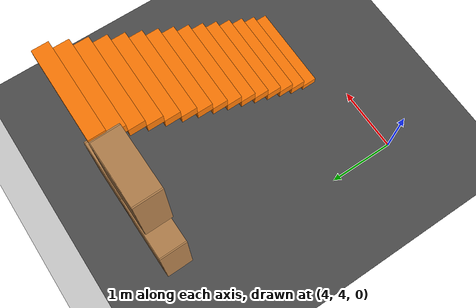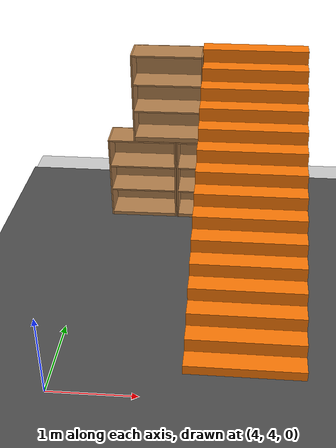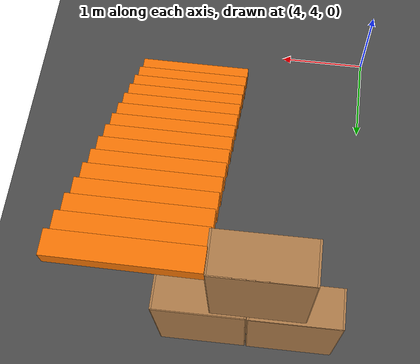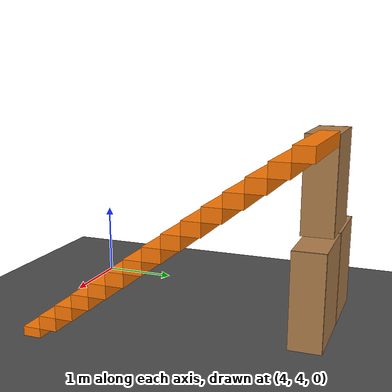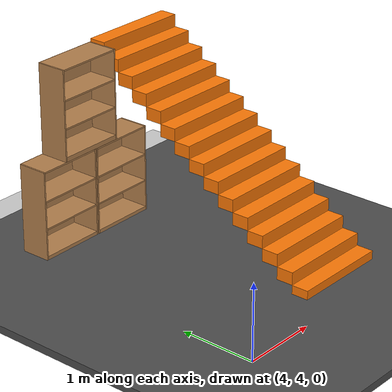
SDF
<sdf version="1.6">
 <world name="default">
  <model name="ground_plane">
   <static>1</static>
   <link name="link">
    <collision name="collision">
     <geometry><plane><normal>0 0 1</normal><size>100 100</size></plane></geometry>
     <surface>
      <contact><collide_bitmask>65535</collide_bitmask></contact>
      <friction><ode><mu>100</mu><mu2>50</mu2></ode></friction>
     </surface>
    </collision>
    <visual name="visual">
     <cast_shadows>0</cast_shadows>
     <geometry><plane><normal>0 0 1</normal><size>100 100</size></plane></geometry>
     <material>
      <script><uri>file://media/materials/scripts/gazebo.material</uri><name>Gazebo/Grey</name></script>
     </material>
    </visual>
   </link>
  </model>
  <model name="asphalt_plane">
   <static>1</static>
   <link name="link">
    <collision name="collision"><geometry><box><size>20 20 0.1</size></box></geometry></collision>
    <visual name="visual">
     <cast_shadows>0</cast_shadows>
     <geometry><box><size>20 20 0.1</size></box></geometry>
     <material>
      <script>
       <uri>model://asphalt_plane/materials/scripts</uri>
       <uri>model://asphalt_plane/materials/textures</uri>
       <name>vrc/asphalt</name>
      </script>
     </material>
    </visual>
   </link>
   <pose>2.60888 -1.39738 0 0 -0 0</pose>
  </model>
  <model name="Untitled_0">
   <pose>6.09283 6.01953 0 0 -0 0</pose>
   <link name="Stairs_1">
    <visual name="Stairs_1_Visual_0">
     <pose>0 -1.59433 0.083333 0 -0 -3.14159</pose>
     <geometry><box><size>1.332 0.227762 0.166667</size></box></geometry>
     <material>
      <script><uri>file://media/materials/scripts/gazebo.material</uri><name>Gazebo/Grey</name></script>
      <ambient>0.996078 0.47451 0.0196078 1</ambient>
     </material>
     <meta><layer>0</layer></meta>
    </visual>
    <collision name="Stairs_1_Collision_0">
     <geometry><box><size>1.332 0.227762 0.166667</size></box></geometry>
     <pose>0 -1.59433 0.083333 0 -0 -3.14159</pose>
    </collision>
    <visual name="Stairs_1_Visual_1">
     <pose>0 -1.36657 0.25 0 -0 -3.14159</pose>
     <geometry><box><size>1.332 0.227762 0.166667</size></box></geometry>
     <material>
      <script><uri>file://media/materials/scripts/gazebo.material</uri><name>Gazebo/Grey</name></script>
      <ambient>0.996078 0.47451 0.0196078 1</ambient>
     </material>
     <meta><layer>0</layer></meta>
    </visual>
    <collision name="Stairs_1_Collision_1">
     <geometry><box><size>1.332 0.227762 0.166667</size></box></geometry>
     <pose>0 -1.36657 0.25 0 -0 -3.14159</pose>
    </collision>
    <visual name="Stairs_1_Visual_2">
     <pose>0 -1.13881 0.416667 0 -0 -3.14159</pose>
     <geometry><box><size>1.332 0.227762 0.166667</size></box></geometry>
     <material>
      <script><uri>file://media/materials/scripts/gazebo.material</uri><name>Gazebo/Grey</name></script>
      <ambient>0.996078 0.47451 0.0196078 1</ambient>
     </material>
     <meta><layer>0</layer></meta>
    </visual>
    <collision name="Stairs_1_Collision_2">
     <geometry><box><size>1.332 0.227762 0.166667</size></box></geometry>
     <pose>0 -1.13881 0.416667 0 -0 -3.14159</pose>
    </collision>
    <visual name="Stairs_1_Visual_3">
     <pose>0 -0.911047 0.583333 0 -0 -3.14159</pose>
     <geometry><box><size>1.332 0.227762 0.166667</size></box></geometry>
     <material>
      <script><uri>file://media/materials/scripts/gazebo.material</uri><name>Gazebo/Grey</name></script>
      <ambient>0.996078 0.47451 0.0196078 1</ambient>
     </material>
     <meta><layer>0</layer></meta>
    </visual>
    <collision name="Stairs_1_Collision_3">
     <geometry><box><size>1.332 0.227762 0.166667</size></box></geometry>
     <pose>0 -0.911047 0.583333 0 -0 -3.14159</pose>
    </collision>
    <visual name="Stairs_1_Visual_4">
     <pose>0 -0.683285 0.75 0 -0 -3.14159</pose>
     <geometry><box><size>1.332 0.227762 0.166667</size></box></geometry>
     <material>
      <script><uri>file://media/materials/scripts/gazebo.material</uri><name>Gazebo/Grey</name></script>
      <ambient>0.996078 0.47451 0.0196078 1</ambient>
     </material>
     <meta><layer>0</layer></meta>
    </visual>
    <collision name="Stairs_1_Collision_4">
     <geometry><box><size>1.332 0.227762 0.166667</size></box></geometry>
     <pose>0 -0.683285 0.75 0 -0 -3.14159</pose>
    </collision>
    <visual name="Stairs_1_Visual_5">
     <pose>0 -0.455523 0.916667 0 -0 -3.14159</pose>
     <geometry><box><size>1.332 0.227762 0.166667</size></box></geometry>
     <material>
      <script><uri>file://media/materials/scripts/gazebo.material</uri><name>Gazebo/Grey</name></script>
      <ambient>0.996078 0.47451 0.0196078 1</ambient>
     </material>
     <meta><layer>0</layer></meta>
    </visual>
    <collision name="Stairs_1_Collision_5">
     <geometry><box><size>1.332 0.227762 0.166667</size></box></geometry>
     <pose>0 -0.455523 0.916667 0 -0 -3.14159</pose>
    </collision>
    <visual name="Stairs_1_Visual_6">
     <pose>0 -0.227762 1.08333 0 -0 -3.14159</pose>
     <geometry><box><size>1.332 0.227762 0.166667</size></box></geometry>
     <material>
      <script><uri>file://media/materials/scripts/gazebo.material</uri><name>Gazebo/Grey</name></script>
      <ambient>0.996078 0.47451 0.0196078 1</ambient>
     </material>
     <meta><layer>0</layer></meta>
    </visual>
    <collision name="Stairs_1_Collision_6">
     <geometry><box><size>1.332 0.227762 0.166667</size></box></geometry>
     <pose>0 -0.227762 1.08333 0 -0 -3.14159</pose>
    </collision>
    <visual name="Stairs_1_Visual_7">
     <pose>0 0 1.25 0 -0 -3.14159</pose>
     <geometry><box><size>1.332 0.227762 0.166667</size></box></geometry>
     <material>
      <script><uri>file://media/materials/scripts/gazebo.material</uri><name>Gazebo/Grey</name></script>
      <ambient>0.996078 0.47451 0.0196078 1</ambient>
     </material>
     <meta><layer>0</layer></meta>
    </visual>
    <collision name="Stairs_1_Collision_7">
     <geometry><box><size>1.332 0.227762 0.166667</size></box></geometry>
     <pose>0 0 1.25 0 -0 -3.14159</pose>
    </collision>
    <visual name="Stairs_1_Visual_8">
     <pose>0 0.227762 1.41667 0 -0 -3.14159</pose>
     <geometry><box><size>1.332 0.227762 0.166667</size></box></geometry>
     <material>
      <script><uri>file://media/materials/scripts/gazebo.material</uri><name>Gazebo/Grey</name></script>
      <ambient>0.996078 0.47451 0.0196078 1</ambient>
     </material>
     <meta><layer>0</layer></meta>
    </visual>
    <collision name="Stairs_1_Collision_8">
     <geometry><box><size>1.332 0.227762 0.166667</size></box></geometry>
     <pose>0 0.227762 1.41667 0 -0 -3.14159</pose>
    </collision>
    <visual name="Stairs_1_Visual_9">
     <pose>0 0.455523 1.58333 0 -0 -3.14159</pose>
     <geometry><box><size>1.332 0.227762 0.166667</size></box></geometry>
     <material>
      <script><uri>file://media/materials/scripts/gazebo.material</uri><name>Gazebo/Grey</name></script>
      <ambient>0.996078 0.47451 0.0196078 1</ambient>
     </material>
     <meta><layer>0</layer></meta>
    </visual>
    <collision name="Stairs_1_Collision_9">
     <geometry><box><size>1.332 0.227762 0.166667</size></box></geometry>
     <pose>0 0.455523 1.58333 0 -0 -3.14159</pose>
    </collision>
    <visual name="Stairs_1_Visual_10">
     <pose>0 0.683285 1.75 0 -0 -3.14159</pose>
     <geometry><box><size>1.332 0.227762 0.166667</size></box></geometry>
     <material>
      <script><uri>file://media/materials/scripts/gazebo.material</uri><name>Gazebo/Grey</name></script>
      <ambient>0.996078 0.47451 0.0196078 1</ambient>
     </material>
     <meta><layer>0</layer></meta>
    </visual>
    <collision name="Stairs_1_Collision_10">
     <geometry><box><size>1.332 0.227762 0.166667</size></box></geometry>
     <pose>0 0.683285 1.75 0 -0 -3.14159</pose>
    </collision>
    <visual name="Stairs_1_Visual_11">
     <pose>0 0.911047 1.91667 0 -0 -3.14159</pose>
     <geometry><box><size>1.332 0.227762 0.166667</size></box></geometry>
     <material>
      <script><uri>file://media/materials/scripts/gazebo.material</uri><name>Gazebo/Grey</name></script>
      <ambient>0.996078 0.47451 0.0196078 1</ambient>
     </material>
     <meta><layer>0</layer></meta>
    </visual>
    <collision name="Stairs_1_Collision_11">
     <geometry><box><size>1.332 0.227762 0.166667</size></box></geometry>
     <pose>0 0.911047 1.91667 0 -0 -3.14159</pose>
    </collision>
    <visual name="Stairs_1_Visual_12">
     <pose>0 1.13881 2.08333 0 -0 -3.14159</pose>
     <geometry><box><size>1.332 0.227762 0.166667</size></box></geometry>
     <material>
      <script><uri>file://media/materials/scripts/gazebo.material</uri><name>Gazebo/Grey</name></script>
      <ambient>0.996078 0.47451 0.0196078 1</ambient>
     </material>
     <meta><layer>0</layer></meta>
    </visual>
    <collision name="Stairs_1_Collision_12">
     <geometry><box><size>1.332 0.227762 0.166667</size></box></geometry>
     <pose>0 1.13881 2.08333 0 -0 -3.14159</pose>
    </collision>
    <visual name="Stairs_1_Visual_13">
     <pose>0 1.36657 2.25 0 -0 -3.14159</pose>
     <geometry><box><size>1.332 0.227762 0.166667</size></box></geometry>
     <material>
      <script><uri>file://media/materials/scripts/gazebo.material</uri><name>Gazebo/Grey</name></script>
      <ambient>0.996078 0.47451 0.0196078 1</ambient>
     </material>
     <meta><layer>0</layer></meta>
    </visual>
    <collision name="Stairs_1_Collision_13">
     <geometry><box><size>1.332 0.227762 0.166667</size></box></geometry>
     <pose>0 1.36657 2.25 0 -0 -3.14159</pose>
    </collision>
    <visual name="Stairs_1_Visual_14">
     <pose>0 1.59433 2.41667 0 -0 -3.14159</pose>
     <geometry><box><size>1.332 0.227762 0.166667</size></box></geometry>
     <material>
      <script><uri>file://media/materials/scripts/gazebo.material</uri><name>Gazebo/Grey</name></script>
      <ambient>0.996078 0.47451 0.0196078 1</ambient>
     </material>
     <meta><layer>0</layer></meta>
    </visual>
    <collision name="Stairs_1_Collision_14">
     <geometry><box><size>1.332 0.227762 0.166667</size></box></geometry>
     <pose>0 1.59433 2.41667 0 -0 -3.14159</pose>
    </collision>
   </link>
   <static>1</static>
  </model>
  <model name="bookshelf_clone_clone_clone_clone_0">
   <static>1</static>
   <link name="link">
    <inertial><mass>1</mass></inertial>
    <collision name="back">
     <pose>0 0.005 0.6 0 -0 0</pose>
     <geometry><box><size>0.9 0.01 1.2</size></box></geometry>
    </collision>
    <visual name="visual1">
     <pose>0 0.005 0.6 0 -0 0</pose>
     <geometry><box><size>0.9 0.01 1.2</size></box></geometry>
     <material>
      <script><uri>file://media/materials/scripts/gazebo.material</uri><name>Gazebo/Wood</name></script>
     </material>
    </visual>
    <collision name="left_side">
     <pose>0.45 -0.195 0.6 0 -0 0</pose>
     <geometry><box><size>0.02 0.4 1.2</size></box></geometry>
    </collision>
    <visual name="visual2">
     <pose>0.45 -0.195 0.6 0 -0 0</pose>
     <geometry><box><size>0.02 0.4 1.2</size></box></geometry>
     <material>
      <script><uri>file://media/materials/scripts/gazebo.material</uri><name>Gazebo/Wood</name></script>
     </material>
    </visual>
    <collision name="right_side">
     <pose>-0.45 -0.195 0.6 0 -0 0</pose>
     <geometry><box><size>0.02 0.4 1.2</size></box></geometry>
    </collision>
    <visual name="visual3">
     <pose>-0.45 -0.195 0.6 0 -0 0</pose>
     <geometry><box><size>0.02 0.4 1.2</size></box></geometry>
     <material>
      <script><uri>file://media/materials/scripts/gazebo.material</uri><name>Gazebo/Wood</name></script>
     </material>
    </visual>
    <collision name="bottom">
     <pose>0 -0.195 0.03 0 -0 0</pose>
     <geometry><box><size>0.88 0.4 0.06</size></box></geometry>
    </collision>
    <visual name="visual4">
     <pose>0 -0.195 0.03 0 -0 0</pose>
     <geometry><box><size>0.88 0.4 0.06</size></box></geometry>
     <material>
      <script><uri>file://media/materials/scripts/gazebo.material</uri><name>Gazebo/Wood</name></script>
     </material>
    </visual>
    <collision name="top">
     <pose>0 -0.195 1.19 0 -0 0</pose>
     <geometry><box><size>0.88 0.4 0.02</size></box></geometry>
    </collision>
    <visual name="visual5">
     <pose>0 -0.195 1.19 0 -0 0</pose>
     <geometry><box><size>0.88 0.4 0.02</size></box></geometry>
     <material>
      <script><uri>file://media/materials/scripts/gazebo.material</uri><name>Gazebo/Wood</name></script>
     </material>
    </visual>
    <collision name="low_shelf">
     <pose>0 -0.195 0.43 0 -0 0</pose>
     <geometry><box><size>0.88 0.4 0.02</size></box></geometry>
    </collision>
    <visual name="visual6">
     <pose>0 -0.195 0.43 0 -0 0</pose>
     <geometry><box><size>0.88 0.4 0.02</size></box></geometry>
     <material>
      <script><uri>file://media/materials/scripts/gazebo.material</uri><name>Gazebo/Wood</name></script>
     </material>
    </visual>
    <collision name="high_shelf">
     <pose>0 -0.195 0.8 0 -0 0</pose>
     <geometry><box><size>0.88 0.4 0.02</size></box></geometry>
    </collision>
    <visual name="visual7">
     <pose>0 -0.195 0.8 0 -0 0</pose>
     <geometry><box><size>0.88 0.4 0.02</size></box></geometry>
     <material>
      <script><uri>file://media/materials/scripts/gazebo.material</uri><name>Gazebo/Wood</name></script>
     </material>
    </visual>
   </link>
   <pose>5.54026 7.74738 0.037852 0 -0 0.010513</pose>
  </model>
  <model name="bookshelf_clone_clone_clone_clone_1">
   <static>1</static>
   <link name="link">
    <inertial><mass>1</mass></inertial>
    <collision name="back">
     <pose>0 0.005 0.6 0 -0 0</pose>
     <geometry><box><size>0.9 0.01 1.2</size></box></geometry>
    </collision>
    <visual name="visual1">
     <pose>0 0.005 0.6 0 -0 0</pose>
     <geometry><box><size>0.9 0.01 1.2</size></box></geometry>
     <material>
      <script><uri>file://media/materials/scripts/gazebo.material</uri><name>Gazebo/Wood</name></script>
     </material>
    </visual>
    <collision name="left_side">
     <pose>0.45 -0.195 0.6 0 -0 0</pose>
     <geometry><box><size>0.02 0.4 1.2</size></box></geometry>
    </collision>
    <visual name="visual2">
     <pose>0.45 -0.195 0.6 0 -0 0</pose>
     <geometry><box><size>0.02 0.4 1.2</size></box></geometry>
     <material>
      <script><uri>file://media/materials/scripts/gazebo.material</uri><name>Gazebo/Wood</name></script>
     </material>
    </visual>
    <collision name="right_side">
     <pose>-0.45 -0.195 0.6 0 -0 0</pose>
     <geometry><box><size>0.02 0.4 1.2</size></box></geometry>
    </collision>
    <visual name="visual3">
     <pose>-0.45 -0.195 0.6 0 -0 0</pose>
     <geometry><box><size>0.02 0.4 1.2</size></box></geometry>
     <material>
      <script><uri>file://media/materials/scripts/gazebo.material</uri><name>Gazebo/Wood</name></script>
     </material>
    </visual>
    <collision name="bottom">
     <pose>0 -0.195 0.03 0 -0 0</pose>
     <geometry><box><size>0.88 0.4 0.06</size></box></geometry>
    </collision>
    <visual name="visual4">
     <pose>0 -0.195 0.03 0 -0 0</pose>
     <geometry><box><size>0.88 0.4 0.06</size></box></geometry>
     <material>
      <script><uri>file://media/materials/scripts/gazebo.material</uri><name>Gazebo/Wood</name></script>
     </material>
    </visual>
    <collision name="top">
     <pose>0 -0.195 1.19 0 -0 0</pose>
     <geometry><box><size>0.88 0.4 0.02</size></box></geometry>
    </collision>
    <visual name="visual5">
     <pose>0 -0.195 1.19 0 -0 0</pose>
     <geometry><box><size>0.88 0.4 0.02</size></box></geometry>
     <material>
      <script><uri>file://media/materials/scripts/gazebo.material</uri><name>Gazebo/Wood</name></script>
     </material>
    </visual>
    <collision name="low_shelf">
     <pose>0 -0.195 0.43 0 -0 0</pose>
     <geometry><box><size>0.88 0.4 0.02</size></box></geometry>
    </collision>
    <visual name="visual6">
     <pose>0 -0.195 0.43 0 -0 0</pose>
     <geometry><box><size>0.88 0.4 0.02</size></box></geometry>
     <material>
      <script><uri>file://media/materials/scripts/gazebo.material</uri><name>Gazebo/Wood</name></script>
     </material>
    </visual>
    <collision name="high_shelf">
     <pose>0 -0.195 0.8 0 -0 0</pose>
     <geometry><box><size>0.88 0.4 0.02</size></box></geometry>
    </collision>
    <visual name="visual7">
     <pose>0 -0.195 0.8 0 -0 0</pose>
     <geometry><box><size>0.88 0.4 0.02</size></box></geometry>
     <material>
      <script><uri>file://media/materials/scripts/gazebo.material</uri><name>Gazebo/Wood</name></script>
     </material>
    </visual>
   </link>
   <pose>4.61199 7.74098 0.037852 0 -0 0.010513</pose>
  </model>
  <model name="bookshelf_clone_clone_clone_clone_2">
   <static>1</static>
   <link name="link">
    <inertial><mass>1</mass></inertial>
    <collision name="back">
     <pose>0 0.005 0.6 0 -0 0</pose>
     <geometry><box><size>0.9 0.01 1.2</size></box></geometry>
    </collision>
    <visual name="visual1">
     <pose>0 0.005 0.6 0 -0 0</pose>
     <geometry><box><size>0.9 0.01 1.2</size></box></geometry>
     <material>
      <script><uri>file://media/materials/scripts/gazebo.material</uri><name>Gazebo/Wood</name></script>
     </material>
    </visual>
    <collision name="left_side">
     <pose>0.45 -0.195 0.6 0 -0 0</pose>
     <geometry><box><size>0.02 0.4 1.2</size></box></geometry>
    </collision>
    <visual name="visual2">
     <pose>0.45 -0.195 0.6 0 -0 0</pose>
     <geometry><box><size>0.02 0.4 1.2</size></box></geometry>
     <material>
      <script><uri>file://media/materials/scripts/gazebo.material</uri><name>Gazebo/Wood</name></script>
     </material>
    </visual>
    <collision name="right_side">
     <pose>-0.45 -0.195 0.6 0 -0 0</pose>
     <geometry><box><size>0.02 0.4 1.2</size></box></geometry>
    </collision>
    <visual name="visual3">
     <pose>-0.45 -0.195 0.6 0 -0 0</pose>
     <geometry><box><size>0.02 0.4 1.2</size></box></geometry>
     <material>
      <script><uri>file://media/materials/scripts/gazebo.material</uri><name>Gazebo/Wood</name></script>
     </material>
    </visual>
    <collision name="bottom">
     <pose>0 -0.195 0.03 0 -0 0</pose>
     <geometry><box><size>0.88 0.4 0.06</size></box></geometry>
    </collision>
    <visual name="visual4">
     <pose>0 -0.195 0.03 0 -0 0</pose>
     <geometry><box><size>0.88 0.4 0.06</size></box></geometry>
     <material>
      <script><uri>file://media/materials/scripts/gazebo.material</uri><name>Gazebo/Wood</name></script>
     </material>
    </visual>
    <collision name="top">
     <pose>0 -0.195 1.19 0 -0 0</pose>
     <geometry><box><size>0.88 0.4 0.02</size></box></geometry>
    </collision>
    <visual name="visual5">
     <pose>0 -0.195 1.19 0 -0 0</pose>
     <geometry><box><size>0.88 0.4 0.02</size></box></geometry>
     <material>
      <script><uri>file://media/materials/scripts/gazebo.material</uri><name>Gazebo/Wood</name></script>
     </material>
    </visual>
    <collision name="low_shelf">
     <pose>0 -0.195 0.43 0 -0 0</pose>
     <geometry><box><size>0.88 0.4 0.02</size></box></geometry>
    </collision>
    <visual name="visual6">
     <pose>0 -0.195 0.43 0 -0 0</pose>
     <geometry><box><size>0.88 0.4 0.02</size></box></geometry>
     <material>
      <script><uri>file://media/materials/scripts/gazebo.material</uri><name>Gazebo/Wood</name></script>
     </material>
    </visual>
    <collision name="high_shelf">
     <pose>0 -0.195 0.8 0 -0 0</pose>
     <geometry><box><size>0.88 0.4 0.02</size></box></geometry>
    </collision>
    <visual name="visual7">
     <pose>0 -0.195 0.8 0 -0 0</pose>
     <geometry><box><size>0.88 0.4 0.02</size></box></geometry>
     <material>
      <script><uri>file://media/materials/scripts/gazebo.material</uri><name>Gazebo/Wood</name></script>
     </material>
    </visual>
   </link>
   <pose>4.97184 7.71771 1.25701 0 -0 0.010513</pose>
  </model>
 </world>
</sdf>
